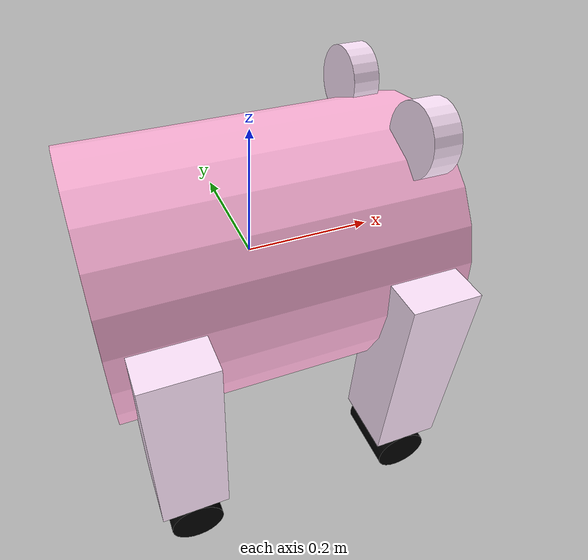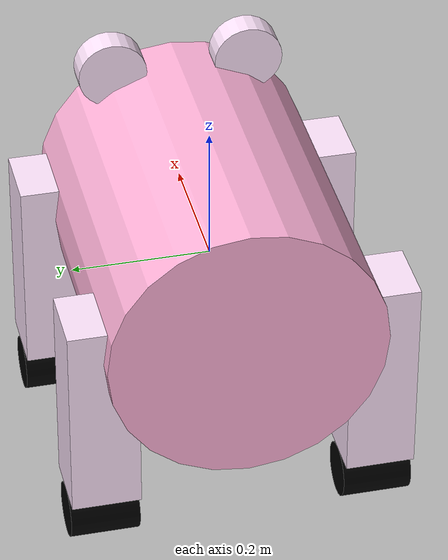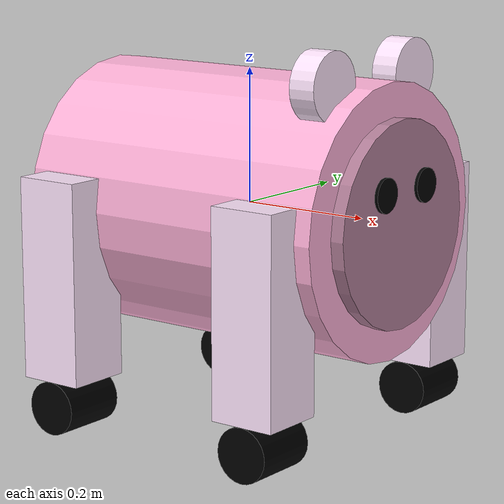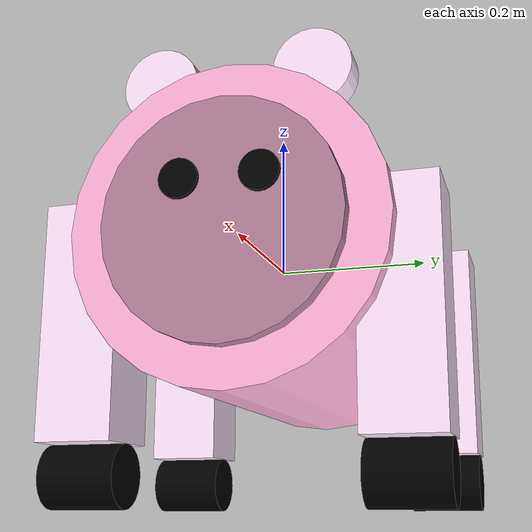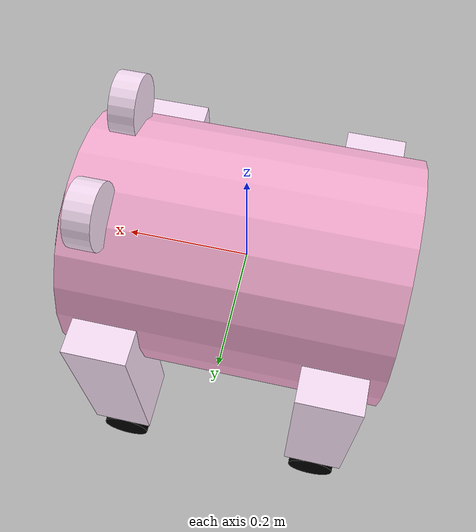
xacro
<?xml version="1.0"?>
<robot xmlns:xacro="http://www.ros.org/wiki/xacro" name="physics">

  <xacro:include filename="$(find robot_description)/urdf/gazebo.urdf.xacro" />

  <!-- Определение материалов -->
  <xacro:macro name="define_materials">
    <material name="blue">
      <color rgba="0 0 0.8 1"/>
    </material>
    <material name="black">
      <color rgba="0 0 0 1"/>
    </material>
    <material name="white">
      <color rgba="1 1 1 1"/>
    </material>
    <material name="pink">
      <color rgba="1 0.7 0.85 1"/>
    </material>
    <material name="light_pink">
      <color rgba="1 0.9 0.99 1"/>
    </material>
    <material name="dark_pink">
      <color rgba="0.7 0.5 0.6 1"/>
    </material>
  </xacro:macro>
  <xacro:define_materials/>

  <!-- Макрос для цилиндра -->
  <xacro:macro name="cylinder_link" params="name length radius material rpy xyz">
    <link name="${name}">
      <visual>
        <geometry>
          <cylinder length="${length}" radius="${radius}"/>
        </geometry>
        <material name="${material}"/>
        <origin rpy="${rpy}" xyz="${xyz}"/>
      </visual>
      <collision>
        <geometry>
          <cylinder length="${length}" radius="${radius}"/>
        </geometry>
        <origin rpy="${rpy}" xyz="${xyz}"/>
      </collision>
      <inertial>
        <mass value="1"/>
        <inertia ixx="1e-3" ixy="0" ixz="0" iyy="1e-3" iyz="0" izz="1e-3"/>
      </inertial>
    </link>
  </xacro:macro>

  <!-- Макрос для соединений -->
  <xacro:macro name="fixed_joint" params="name parent child xyz rpy">
    <joint name="${name}" type="fixed">
      <parent link="${parent}"/>
      <child link="${child}"/>
      <origin xyz="${xyz}" rpy="${rpy}"/>
    </joint>
  </xacro:macro>

  <!-- Базовая структура робота -->
  <xacro:cylinder_link name="base_link" length="0.5" radius="0.2" material="pink" rpy="1.5708 0 1.5708" xyz="0 0 0"/>

  <!-- Лапы -->
  <xacro:macro name="leg" params="name parent xyz material">
    <link name="${name}">
      <visual>
        <geometry>
          <box size="0.1 0.1 0.3"/>
        </geometry>
        <material name="${material}"/>
        <origin rpy="0 0 0" xyz="${xyz}"/>
      </visual>
      <collision>
        <geometry>
          <box size="0.1 0.1 0.3"/>
        </geometry>
        <origin rpy="0 0 0" xyz="${xyz}"/>
      </collision>
      <inertial>
        <mass value="10"/>
        <inertia ixx="1e-3" ixy="0" ixz="0" iyy="1e-3" iyz="0" izz="1e-3"/>
      </inertial>
    </link>
    <xacro:fixed_joint name="${parent}_to_${name}" parent="${parent}" child="${name}" xyz="0 0 0" rpy="0 0 0"/>
  </xacro:macro>

  <xacro:leg name="right_top_leg" parent="base_link" xyz="0.175 -0.2 -0.1" material="light_pink"/>
  <xacro:leg name="right_back_leg" parent="base_link" xyz="-0.175 -0.2 -0.1" material="light_pink"/>
  <xacro:leg name="left_top_leg" parent="base_link" xyz="0.175 0.2 -0.1" material="light_pink"/>
  <xacro:leg name="left_back_leg" parent="base_link" xyz="-0.175 0.2 -0.1" material="light_pink"/>

  <!-- Пример для других компонентов, например, колес -->
  <!-- Макрос для создания колеса -->
  <xacro:macro name="wheel" params="side front_back parent_link xyz rpy">
  <!-- Ссылка на колесо -->
  <xacro:cylinder_link name="${side}_${front_back}_wheel"
                       length="0.1"
                       radius="0.04"
                       material="black"
                       rpy="1.57075 0 0"
                       xyz="0 0 0"/>

  <!-- Шарнир колеса -->
  <joint name="${side}_${front_back}_wheel_joint" type="continuous">
    <axis xyz="0 1 0"/>
    <parent link="${parent_link}"/>
    <child link="${side}_${front_back}_wheel"/>
    <origin xyz="${xyz}" rpy="${rpy}"/>
  </joint>
  </xacro:macro>

  <!-- Создание колес -->
  <xacro:wheel side="right" front_back="front" parent_link="right_top_leg" xyz="0.175 -0.2 -0.29" rpy="0 0 0"/>
  <xacro:wheel side="right" front_back="back" parent_link="right_top_leg" xyz="-0.175 -0.2 -0.29" rpy="0 0 0"/>
  <xacro:wheel side="left" front_back="front" parent_link="left_top_leg" xyz="0.175 0.2 -0.29" rpy="0 0 0"/>
  <xacro:wheel side="left" front_back="back" parent_link="left_top_leg" xyz="-0.175 0.2 -0.29" rpy="0 0 0"/>

<!-- Макрос для создания головы -->
<xacro:macro name="head" params="parent_link head_xyz head_rpy">
  <link name="head">
    <visual>
      <geometry>
        <cylinder length="0.04" radius="0.15"/>
      </geometry>
      <material name="dark_pink"/>
      <origin rpy="1.5708 0 1.5708" xyz="0 0 0"/>
    </visual>
    <collision>
      <geometry>
        <cylinder length="0.04" radius="0.15"/>
      </geometry>
      <origin rpy="1.5708 0 1.5708" xyz="0 0 0"/>
    </collision>
    <inertial>
      <mass value="10"/>
      <inertia ixx="1e-3" ixy="0.0" ixz="0.0" iyy="1e-3" iyz="0.0" izz="1e-3"/>
    </inertial>
  </link>
  <joint name="head_joint" type="fixed">
    <parent link="${parent_link}"/>
    <child link="head"/>
    <origin xyz="${head_xyz}" rpy="${head_rpy}"/>
  </joint>
</xacro:macro>

<!-- Макрос для глаза -->
<xacro:macro name="eye" params="side xyz rpy">
  <link name="${side}_eye">
    <visual>
      <geometry>
        <cylinder length="0.01" radius="0.025"/>
      </geometry>
      <material name="black"/>
      <origin rpy="1.5708 0 1.5708" xyz="0 0 0"/>
    </visual>
    <collision>
      <geometry>
        <cylinder length="0.01" radius="0.025"/>
      </geometry>
      <origin rpy="1.5708 0 1.5708" xyz="0 0 0"/>
    </collision>
    <inertial>
      <mass value="10"/>
      <inertia ixx="1e-3" ixy="0.0" ixz="0.0" iyy="1e-3" iyz="0.0" izz="1e-3"/>
    </inertial>
  </link>
  <joint name="${side}_eye_joint" type="continuous">
    <axis xyz="0 1 0"/>
    <parent link="head"/>
    <child link="${side}_eye"/>
    <origin xyz="${xyz}" rpy="${rpy}"/>
  </joint>
</xacro:macro>

<!-- Макрос для уха -->
<xacro:macro name="ear" params="side xyz rpy">
  <link name="${side}_ear">
    <visual>
      <geometry>
        <cylinder length="0.04" radius="0.05"/>
      </geometry>
      <material name="light_pink"/>
      <origin rpy="1.5708 0 1.5708" xyz="0 0 0"/>
    </visual>
    <collision>
      <geometry>
        <cylinder length="0.04" radius="0.05"/>
      </geometry>
      <origin rpy="1.5708 0 1.5708" xyz="0 0 0"/>
    </collision>
    <inertial>
      <mass value="10"/>
      <inertia ixx="1e-3" ixy="0.0" ixz="0.0" iyy="1e-3" iyz="0.0" izz="1e-3"/>
    </inertial>
  </link>
  <joint name="${side}_ear_joint" type="continuous">
    <axis xyz="0 1 0"/>
    <parent link="head"/>
    <child link="${side}_ear"/>
    <origin xyz="${xyz}" rpy="${rpy}"/>
  </joint>
</xacro:macro>

<!-- Вызовы макросов -->
<xacro:head parent_link="base_link" head_xyz="0.25 0 0" head_rpy="0 0 0"/>
<xacro:eye side="left" xyz="0.02 0.05 0.05" rpy="0 0 0"/>
<xacro:eye side="right" xyz="0.02 -0.05 0.05" rpy="0 0 0"/>
<xacro:ear side="left" xyz="-0.05 0.1 0.2" rpy="0 0 0"/>
<xacro:ear side="right" xyz="-0.05 -0.1 0.2" rpy="0 0 0"/>

</robot>
